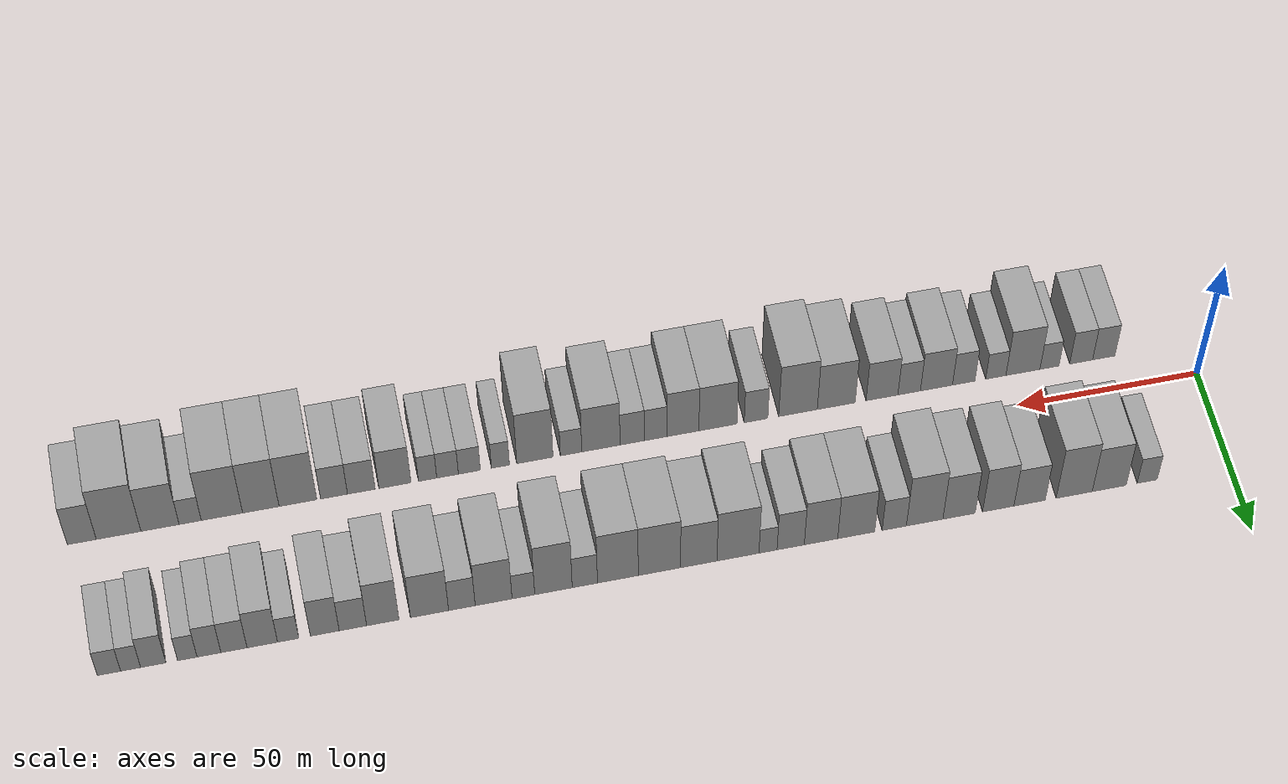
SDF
<sdf version="1.6">
 <world name="default">
  <scene>
   <sky><clouds><speed>12</speed></clouds></sky>
   <ambient>0.4 0.4 0.4 1</ambient>
   <background>0.7 0.7 0.7 1</background>
   <shadows>1</shadows>
  </scene>
  <gravity>0 0 -9.8066</gravity>
  <magnetic_field>6e-06 2.3e-05 -4.2e-05</magnetic_field>
  <physics default="0" name="default_physics" type="ode">
   <ode>
    <solver>
     <type>quick</type>
     <iters>10</iters>
     <sor>1.0</sor>
     <use_dynamic_moi_rescaling>0</use_dynamic_moi_rescaling>
    </solver>
    <constraints>
     <cfm>0</cfm>
     <erp>0.2</erp>
     <contact_max_correcting_vel>100</contact_max_correcting_vel>
     <contact_surface_layer>0.001</contact_surface_layer>
    </constraints>
   </ode>
   <max_step_size>0.004</max_step_size>
   <real_time_factor>1</real_time_factor>
   <real_time_update_rate>250</real_time_update_rate>
  </physics>
  <light name="sun" type="directional">
   <pose>0 0 10 0 0 0</pose>
   <diffuse>0.8 0.8 0.8 1</diffuse>
   <specular>0.2 0.2 0.2 1</specular>
   <attenuation>
    <range>1000</range>
    <constant>0.9</constant>
    <linear>0.01</linear>
    <quadratic>0.001</quadratic>
   </attenuation>
   <direction>-0.5 0.1 -0.9</direction>
  </light>
  <model name="building_1">
   <static>1</static>
   <pose>22.7554 20.0000 0 0.000000 0.000000 1.570796</pose>
   <link name="link">
    <pose>0 0 6.00 0 0 0</pose>
    <collision name="collision"><geometry><box><size>20.0000 5.5108 12.0000</size></box></geometry></collision>
    <visual name="visual">
     <cast_shadows>0</cast_shadows>
     <geometry><box><size>20.0000 5.5108 12.0000</size></box></geometry>
     <material>
      <script>
       <uri>model://grey_wall/materials/scripts</uri>
       <uri>model://grey_wall/materials/textures</uri>
       <name>vrc/grey_wall</name>
      </script>
     </material>
    </visual>
   </link>
  </model>
  <model name="building_2">
   <static>1</static>
   <pose>33.1985 20.0000 0 0.000000 0.000000 1.570796</pose>
   <link name="link">
    <pose>0 0 10.50 0 0 0</pose>
    <collision name="collision"><geometry><box><size>20.0000 9.3754 21.0000</size></box></geometry></collision>
    <visual name="visual">
     <cast_shadows>0</cast_shadows>
     <geometry><box><size>20.0000 9.3754 21.0000</size></box></geometry>
     <material>
      <script>
       <uri>model://grey_wall/materials/scripts</uri>
       <uri>model://grey_wall/materials/textures</uri>
       <name>vrc/grey_wall</name>
      </script>
     </material>
    </visual>
   </link>
  </model>
  <model name="building_3">
   <static>1</static>
   <pose>42.8242 20.0000 0 0.000000 0.000000 1.570796</pose>
   <link name="link">
    <pose>0 0 12.00 0 0 0</pose>
    <collision name="collision"><geometry><box><size>20.0000 9.8761 24.0000</size></box></geometry></collision>
    <visual name="visual">
     <cast_shadows>0</cast_shadows>
     <geometry><box><size>20.0000 9.8761 24.0000</size></box></geometry>
     <material>
      <script>
       <uri>model://grey_wall/materials/scripts</uri>
       <uri>model://grey_wall/materials/textures</uri>
       <name>vrc/grey_wall</name>
      </script>
     </material>
    </visual>
   </link>
  </model>
  <model name="building_4">
   <static>1</static>
   <pose>55.0346 20.0000 0 0.000000 0.000000 1.570796</pose>
   <link name="link">
    <pose>0 0 9.00 0 0 0</pose>
    <collision name="collision"><geometry><box><size>20.0000 8.5447 18.0000</size></box></geometry></collision>
    <visual name="visual">
     <cast_shadows>0</cast_shadows>
     <geometry><box><size>20.0000 8.5447 18.0000</size></box></geometry>
     <material>
      <script>
       <uri>model://grey_wall/materials/scripts</uri>
       <uri>model://grey_wall/materials/textures</uri>
       <name>vrc/grey_wall</name>
      </script>
     </material>
    </visual>
   </link>
  </model>
  <model name="building_5">
   <static>1</static>
   <pose>63.5918 20.0000 0 0.000000 0.000000 1.570796</pose>
   <link name="link">
    <pose>0 0 10.50 0 0 0</pose>
    <collision name="collision"><geometry><box><size>20.0000 8.5697 21.0000</size></box></geometry></collision>
    <visual name="visual">
     <cast_shadows>0</cast_shadows>
     <geometry><box><size>20.0000 8.5697 21.0000</size></box></geometry>
     <material>
      <script>
       <uri>model://grey_wall/materials/scripts</uri>
       <uri>model://grey_wall/materials/textures</uri>
       <name>vrc/grey_wall</name>
      </script>
     </material>
    </visual>
   </link>
  </model>
  <model name="building_6">
   <static>1</static>
   <pose>74.2728 20.0000 0 0.000000 0.000000 1.570796</pose>
   <link name="link">
    <pose>0 0 10.50 0 0 0</pose>
    <collision name="collision"><geometry><box><size>20.0000 8.7923 21.0000</size></box></geometry></collision>
    <visual name="visual">
     <cast_shadows>0</cast_shadows>
     <geometry><box><size>20.0000 8.7923 21.0000</size></box></geometry>
     <material>
      <script>
       <uri>model://grey_wall/materials/scripts</uri>
       <uri>model://grey_wall/materials/textures</uri>
       <name>vrc/grey_wall</name>
      </script>
     </material>
    </visual>
   </link>
  </model>
  <model name="building_7">
   <static>1</static>
   <pose>83.6210 20.0000 0 0.000000 0.000000 1.570796</pose>
   <link name="link">
    <pose>0 0 12.00 0 0 0</pose>
    <collision name="collision"><geometry><box><size>20.0000 9.9040 24.0000</size></box></geometry></collision>
    <visual name="visual">
     <cast_shadows>0</cast_shadows>
     <geometry><box><size>20.0000 9.9040 24.0000</size></box></geometry>
     <material>
      <script>
       <uri>model://grey_wall/materials/scripts</uri>
       <uri>model://grey_wall/materials/textures</uri>
       <name>vrc/grey_wall</name>
      </script>
     </material>
    </visual>
   </link>
  </model>
  <model name="building_8">
   <static>1</static>
   <pose>91.8562 20.0000 0 0.000000 0.000000 1.570796</pose>
   <link name="link">
    <pose>0 0 7.50 0 0 0</pose>
    <collision name="collision"><geometry><box><size>20.0000 6.5665 15.0000</size></box></geometry></collision>
    <visual name="visual">
     <cast_shadows>0</cast_shadows>
     <geometry><box><size>20.0000 6.5665 15.0000</size></box></geometry>
     <material>
      <script>
       <uri>model://grey_wall/materials/scripts</uri>
       <uri>model://grey_wall/materials/textures</uri>
       <name>vrc/grey_wall</name>
      </script>
     </material>
    </visual>
   </link>
  </model>
  <model name="building_9">
   <static>1</static>
   <pose>102.1402 20.0000 0 0.000000 0.000000 1.570796</pose>
   <link name="link">
    <pose>0 0 10.50 0 0 0</pose>
    <collision name="collision"><geometry><box><size>20.0000 10.0015 21.0000</size></box></geometry></collision>
    <visual name="visual">
     <cast_shadows>0</cast_shadows>
     <geometry><box><size>20.0000 10.0015 21.0000</size></box></geometry>
     <material>
      <script>
       <uri>model://grey_wall/materials/scripts</uri>
       <uri>model://grey_wall/materials/textures</uri>
       <name>vrc/grey_wall</name>
      </script>
     </material>
    </visual>
   </link>
  </model>
  <model name="building_10">
   <static>1</static>
   <pose>111.6415 20.0000 0 0.000000 0.000000 1.570796</pose>
   <link name="link">
    <pose>0 0 10.50 0 0 0</pose>
    <collision name="collision"><geometry><box><size>20.0000 9.0011 21.0000</size></box></geometry></collision>
    <visual name="visual">
     <cast_shadows>0</cast_shadows>
     <geometry><box><size>20.0000 9.0011 21.0000</size></box></geometry>
     <material>
      <script>
       <uri>model://grey_wall/materials/scripts</uri>
       <uri>model://grey_wall/materials/textures</uri>
       <name>vrc/grey_wall</name>
      </script>
     </material>
    </visual>
   </link>
  </model>
  <model name="building_11">
   <static>1</static>
   <pose>119.8047 20.0000 0 0.000000 0.000000 1.570796</pose>
   <link name="link">
    <pose>0 0 9.00 0 0 0</pose>
    <collision name="collision"><geometry><box><size>20.0000 7.3252 18.0000</size></box></geometry></collision>
    <visual name="visual">
     <cast_shadows>0</cast_shadows>
     <geometry><box><size>20.0000 7.3252 18.0000</size></box></geometry>
     <material>
      <script>
       <uri>model://grey_wall/materials/scripts</uri>
       <uri>model://grey_wall/materials/textures</uri>
       <name>vrc/grey_wall</name>
      </script>
     </material>
    </visual>
   </link>
  </model>
  <model name="building_12">
   <static>1</static>
   <pose>125.8942 20.0000 0 0.000000 0.000000 1.570796</pose>
   <link name="link">
    <pose>0 0 6.00 0 0 0</pose>
    <collision name="collision"><geometry><box><size>20.0000 4.8540 12.0000</size></box></geometry></collision>
    <visual name="visual">
     <cast_shadows>0</cast_shadows>
     <geometry><box><size>20.0000 4.8540 12.0000</size></box></geometry>
     <material>
      <script>
       <uri>model://grey_wall/materials/scripts</uri>
       <uri>model://grey_wall/materials/textures</uri>
       <name>vrc/grey_wall</name>
      </script>
     </material>
    </visual>
   </link>
  </model>
  <model name="building_13">
   <static>1</static>
   <pose>133.9454 20.0000 0 0.000000 0.000000 1.570796</pose>
   <link name="link">
    <pose>0 0 12.00 0 0 0</pose>
    <collision name="collision"><geometry><box><size>20.0000 11.2484 24.0000</size></box></geometry></collision>
    <visual name="visual">
     <cast_shadows>0</cast_shadows>
     <geometry><box><size>20.0000 11.2484 24.0000</size></box></geometry>
     <material>
      <script>
       <uri>model://grey_wall/materials/scripts</uri>
       <uri>model://grey_wall/materials/textures</uri>
       <name>vrc/grey_wall</name>
      </script>
     </material>
    </visual>
   </link>
  </model>
  <model name="building_14">
   <static>1</static>
   <pose>144.4498 20.0000 0 0.000000 0.000000 1.570796</pose>
   <link name="link">
    <pose>0 0 10.50 0 0 0</pose>
    <collision name="collision"><geometry><box><size>20.0000 9.7603 21.0000</size></box></geometry></collision>
    <visual name="visual">
     <cast_shadows>0</cast_shadows>
     <geometry><box><size>20.0000 9.7603 21.0000</size></box></geometry>
     <material>
      <script>
       <uri>model://grey_wall/materials/scripts</uri>
       <uri>model://grey_wall/materials/textures</uri>
       <name>vrc/grey_wall</name>
      </script>
     </material>
    </visual>
   </link>
  </model>
  <model name="building_15">
   <static>1</static>
   <pose>154.9376 20.0000 0 0.000000 0.000000 1.570796</pose>
   <link name="link">
    <pose>0 0 12.00 0 0 0</pose>
    <collision name="collision"><geometry><box><size>20.0000 11.2152 24.0000</size></box></geometry></collision>
    <visual name="visual">
     <cast_shadows>0</cast_shadows>
     <geometry><box><size>20.0000 11.2152 24.0000</size></box></geometry>
     <material>
      <script>
       <uri>model://grey_wall/materials/scripts</uri>
       <uri>model://grey_wall/materials/textures</uri>
       <name>vrc/grey_wall</name>
      </script>
     </material>
    </visual>
   </link>
  </model>
  <model name="building_16">
   <static>1</static>
   <pose>165.9656 20.0000 0 0.000000 0.000000 1.570796</pose>
   <link name="link">
    <pose>0 0 12.00 0 0 0</pose>
    <collision name="collision"><geometry><box><size>20.0000 10.8410 24.0000</size></box></geometry></collision>
    <visual name="visual">
     <cast_shadows>0</cast_shadows>
     <geometry><box><size>20.0000 10.8410 24.0000</size></box></geometry>
     <material>
      <script>
       <uri>model://grey_wall/materials/scripts</uri>
       <uri>model://grey_wall/materials/textures</uri>
       <name>vrc/grey_wall</name>
      </script>
     </material>
    </visual>
   </link>
  </model>
  <model name="building_17">
   <static>1</static>
   <pose>174.7330 20.0000 0 0.000000 0.000000 1.570796</pose>
   <link name="link">
    <pose>0 0 7.50 0 0 0</pose>
    <collision name="collision"><geometry><box><size>20.0000 6.6937 15.0000</size></box></geometry></collision>
    <visual name="visual">
     <cast_shadows>0</cast_shadows>
     <geometry><box><size>20.0000 6.6937 15.0000</size></box></geometry>
     <material>
      <script>
       <uri>model://grey_wall/materials/scripts</uri>
       <uri>model://grey_wall/materials/textures</uri>
       <name>vrc/grey_wall</name>
      </script>
     </material>
    </visual>
   </link>
  </model>
  <model name="building_18">
   <static>1</static>
   <pose>183.0394 20.0000 0 0.000000 0.000000 1.570796</pose>
   <link name="link">
    <pose>0 0 12.00 0 0 0</pose>
    <collision name="collision"><geometry><box><size>20.0000 9.9190 24.0000</size></box></geometry></collision>
    <visual name="visual">
     <cast_shadows>0</cast_shadows>
     <geometry><box><size>20.0000 9.9190 24.0000</size></box></geometry>
     <material>
      <script>
       <uri>model://grey_wall/materials/scripts</uri>
       <uri>model://grey_wall/materials/textures</uri>
       <name>vrc/grey_wall</name>
      </script>
     </material>
    </visual>
   </link>
  </model>
  <model name="building_19">
   <static>1</static>
   <pose>190.9892 20.0000 0 0.000000 0.000000 1.570796</pose>
   <link name="link">
    <pose>0 0 6.00 0 0 0</pose>
    <collision name="collision"><geometry><box><size>20.0000 5.9807 12.0000</size></box></geometry></collision>
    <visual name="visual">
     <cast_shadows>0</cast_shadows>
     <geometry><box><size>20.0000 5.9807 12.0000</size></box></geometry>
     <material>
      <script>
       <uri>model://grey_wall/materials/scripts</uri>
       <uri>model://grey_wall/materials/textures</uri>
       <name>vrc/grey_wall</name>
      </script>
     </material>
    </visual>
   </link>
  </model>
  <model name="building_20">
   <static>1</static>
   <pose>198.8270 20.0000 0 0.000000 0.000000 1.570796</pose>
   <link name="link">
    <pose>0 0 10.50 0 0 0</pose>
    <collision name="collision"><geometry><box><size>20.0000 9.6948 21.0000</size></box></geometry></collision>
    <visual name="visual">
     <cast_shadows>0</cast_shadows>
     <geometry><box><size>20.0000 9.6948 21.0000</size></box></geometry>
     <material>
      <script>
       <uri>model://grey_wall/materials/scripts</uri>
       <uri>model://grey_wall/materials/textures</uri>
       <name>vrc/grey_wall</name>
      </script>
     </material>
    </visual>
   </link>
  </model>
  <model name="building_21">
   <static>1</static>
   <pose>207.1692 20.0000 0 0.000000 0.000000 1.570796</pose>
   <link name="link">
    <pose>0 0 7.50 0 0 0</pose>
    <collision name="collision"><geometry><box><size>20.0000 6.9896 15.0000</size></box></geometry></collision>
    <visual name="visual">
     <cast_shadows>0</cast_shadows>
     <geometry><box><size>20.0000 6.9896 15.0000</size></box></geometry>
     <material>
      <script>
       <uri>model://grey_wall/materials/scripts</uri>
       <uri>model://grey_wall/materials/textures</uri>
       <name>vrc/grey_wall</name>
      </script>
     </material>
    </visual>
   </link>
  </model>
  <model name="building_22">
   <static>1</static>
   <pose>215.6674 20.0000 0 0.000000 0.000000 1.570796</pose>
   <link name="link">
    <pose>0 0 10.50 0 0 0</pose>
    <collision name="collision"><geometry><box><size>20.0000 10.0068 21.0000</size></box></geometry></collision>
    <visual name="visual">
     <cast_shadows>0</cast_shadows>
     <geometry><box><size>20.0000 10.0068 21.0000</size></box></geometry>
     <material>
      <script>
       <uri>model://grey_wall/materials/scripts</uri>
       <uri>model://grey_wall/materials/textures</uri>
       <name>vrc/grey_wall</name>
      </script>
     </material>
    </visual>
   </link>
  </model>
  <model name="building_23">
   <static>1</static>
   <pose>227.8896 20.0000 0 0.000000 0.000000 1.570796</pose>
   <link name="link">
    <pose>0 0 10.50 0 0 0</pose>
    <collision name="collision"><geometry><box><size>20.0000 8.4376 21.0000</size></box></geometry></collision>
    <visual name="visual">
     <cast_shadows>0</cast_shadows>
     <geometry><box><size>20.0000 8.4376 21.0000</size></box></geometry>
     <material>
      <script>
       <uri>model://grey_wall/materials/scripts</uri>
       <uri>model://grey_wall/materials/textures</uri>
       <name>vrc/grey_wall</name>
      </script>
     </material>
    </visual>
   </link>
  </model>
  <model name="building_24">
   <static>1</static>
   <pose>235.6966 20.0000 0 0.000000 0.000000 1.570796</pose>
   <link name="link">
    <pose>0 0 7.50 0 0 0</pose>
    <collision name="collision"><geometry><box><size>20.0000 7.1764 15.0000</size></box></geometry></collision>
    <visual name="visual">
     <cast_shadows>0</cast_shadows>
     <geometry><box><size>20.0000 7.1764 15.0000</size></box></geometry>
     <material>
      <script>
       <uri>model://grey_wall/materials/scripts</uri>
       <uri>model://grey_wall/materials/textures</uri>
       <name>vrc/grey_wall</name>
      </script>
     </material>
    </visual>
   </link>
  </model>
  <model name="building_25">
   <static>1</static>
   <pose>243.0380 20.0000 0 0.000000 0.000000 1.570796</pose>
   <link name="link">
    <pose>0 0 9.00 0 0 0</pose>
    <collision name="collision"><geometry><box><size>20.0000 7.5064 18.0000</size></box></geometry></collision>
    <visual name="visual">
     <cast_shadows>0</cast_shadows>
     <geometry><box><size>20.0000 7.5064 18.0000</size></box></geometry>
     <material>
      <script>
       <uri>model://grey_wall/materials/scripts</uri>
       <uri>model://grey_wall/materials/textures</uri>
       <name>vrc/grey_wall</name>
      </script>
     </material>
    </visual>
   </link>
  </model>
  <model name="building_26">
   <static>1</static>
   <pose>252.5489 20.0000 0 0.000000 0.000000 1.570796</pose>
   <link name="link">
    <pose>0 0 6.00 0 0 0</pose>
    <collision name="collision"><geometry><box><size>20.0000 5.5153 12.0000</size></box></geometry></collision>
    <visual name="visual">
     <cast_shadows>0</cast_shadows>
     <geometry><box><size>20.0000 5.5153 12.0000</size></box></geometry>
     <material>
      <script>
       <uri>model://grey_wall/materials/scripts</uri>
       <uri>model://grey_wall/materials/textures</uri>
       <name>vrc/grey_wall</name>
      </script>
     </material>
    </visual>
   </link>
  </model>
  <model name="building_27">
   <static>1</static>
   <pose>259.2600 20.0000 0 0.000000 0.000000 1.570796</pose>
   <link name="link">
    <pose>0 0 9.00 0 0 0</pose>
    <collision name="collision"><geometry><box><size>20.0000 7.9069 18.0000</size></box></geometry></collision>
    <visual name="visual">
     <cast_shadows>0</cast_shadows>
     <geometry><box><size>20.0000 7.9069 18.0000</size></box></geometry>
     <material>
      <script>
       <uri>model://grey_wall/materials/scripts</uri>
       <uri>model://grey_wall/materials/textures</uri>
       <name>vrc/grey_wall</name>
      </script>
     </material>
    </visual>
   </link>
  </model>
  <model name="building_28">
   <static>1</static>
   <pose>266.5928 20.0000 0 0.000000 0.000000 1.570796</pose>
   <link name="link">
    <pose>0 0 7.50 0 0 0</pose>
    <collision name="collision"><geometry><box><size>20.0000 6.7587 15.0000</size></box></geometry></collision>
    <visual name="visual">
     <cast_shadows>0</cast_shadows>
     <geometry><box><size>20.0000 6.7587 15.0000</size></box></geometry>
     <material>
      <script>
       <uri>model://grey_wall/materials/scripts</uri>
       <uri>model://grey_wall/materials/textures</uri>
       <name>vrc/grey_wall</name>
      </script>
     </material>
    </visual>
   </link>
  </model>
  <model name="building_29">
   <static>1</static>
   <pose>273.0589 20.0000 0 0.000000 0.000000 1.570796</pose>
   <link name="link">
    <pose>0 0 7.50 0 0 0</pose>
    <collision name="collision"><geometry><box><size>20.0000 6.1735 15.0000</size></box></geometry></collision>
    <visual name="visual">
     <cast_shadows>0</cast_shadows>
     <geometry><box><size>20.0000 6.1735 15.0000</size></box></geometry>
     <material>
      <script>
       <uri>model://grey_wall/materials/scripts</uri>
       <uri>model://grey_wall/materials/textures</uri>
       <name>vrc/grey_wall</name>
      </script>
     </material>
    </visual>
   </link>
  </model>
  <model name="building_30">
   <static>1</static>
   <pose>278.6506 20.0000 0 0.000000 0.000000 1.570796</pose>
   <link name="link">
    <pose>0 0 6.00 0 0 0</pose>
    <collision name="collision"><geometry><box><size>20.0000 5.0098 12.0000</size></box></geometry></collision>
    <visual name="visual">
     <cast_shadows>0</cast_shadows>
     <geometry><box><size>20.0000 5.0098 12.0000</size></box></geometry>
     <material>
      <script>
       <uri>model://grey_wall/materials/scripts</uri>
       <uri>model://grey_wall/materials/textures</uri>
       <name>vrc/grey_wall</name>
      </script>
     </material>
    </visual>
   </link>
  </model>
  <model name="building_31">
   <static>1</static>
   <pose>287.4154 20.0000 0 0.000000 0.000000 1.570796</pose>
   <link name="link">
    <pose>0 0 7.50 0 0 0</pose>
    <collision name="collision"><geometry><box><size>20.0000 6.5198 15.0000</size></box></geometry></collision>
    <visual name="visual">
     <cast_shadows>0</cast_shadows>
     <geometry><box><size>20.0000 6.5198 15.0000</size></box></geometry>
     <material>
      <script>
       <uri>model://grey_wall/materials/scripts</uri>
       <uri>model://grey_wall/materials/textures</uri>
       <name>vrc/grey_wall</name>
      </script>
     </material>
    </visual>
   </link>
  </model>
  <model name="building_32">
   <static>1</static>
   <pose>293.2483 20.0000 0 0.000000 0.000000 1.570796</pose>
   <link name="link">
    <pose>0 0 6.00 0 0 0</pose>
    <collision name="collision"><geometry><box><size>20.0000 5.1459 12.0000</size></box></geometry></collision>
    <visual name="visual">
     <cast_shadows>0</cast_shadows>
     <geometry><box><size>20.0000 5.1459 12.0000</size></box></geometry>
     <material>
      <script>
       <uri>model://grey_wall/materials/scripts</uri>
       <uri>model://grey_wall/materials/textures</uri>
       <name>vrc/grey_wall</name>
      </script>
     </material>
    </visual>
   </link>
  </model>
  <model name="building_33">
   <static>1</static>
   <pose>298.8159 20.0000 0 0.000000 0.000000 1.570796</pose>
   <link name="link">
    <pose>0 0 6.00 0 0 0</pose>
    <collision name="collision"><geometry><box><size>20.0000 5.9893 12.0000</size></box></geometry></collision>
    <visual name="visual">
     <cast_shadows>0</cast_shadows>
     <geometry><box><size>20.0000 5.9893 12.0000</size></box></geometry>
     <material>
      <script>
       <uri>model://grey_wall/materials/scripts</uri>
       <uri>model://grey_wall/materials/textures</uri>
       <name>vrc/grey_wall</name>
      </script>
     </material>
    </visual>
   </link>
  </model>
  <model name="building_34">
   <static>1</static>
   <pose>23.1378 -20.0000 0 0.000000 0.000000 1.570796</pose>
   <link name="link">
    <pose>0 0 7.50 0 0 0</pose>
    <collision name="collision"><geometry><box><size>20.0000 6.2755 15.0000</size></box></geometry></collision>
    <visual name="visual">
     <cast_shadows>0</cast_shadows>
     <geometry><box><size>20.0000 6.2755 15.0000</size></box></geometry>
     <material>
      <script>
       <uri>model://grey_wall/materials/scripts</uri>
       <uri>model://grey_wall/materials/textures</uri>
       <name>vrc/grey_wall</name>
      </script>
     </material>
    </visual>
   </link>
  </model>
  <model name="building_35">
   <static>1</static>
   <pose>29.5007 -20.0000 0 0.000000 0.000000 1.570796</pose>
   <link name="link">
    <pose>0 0 7.50 0 0 0</pose>
    <collision name="collision"><geometry><box><size>20.0000 6.4504 15.0000</size></box></geometry></collision>
    <visual name="visual">
     <cast_shadows>0</cast_shadows>
     <geometry><box><size>20.0000 6.4504 15.0000</size></box></geometry>
     <material>
      <script>
       <uri>model://grey_wall/materials/scripts</uri>
       <uri>model://grey_wall/materials/textures</uri>
       <name>vrc/grey_wall</name>
      </script>
     </material>
    </visual>
   </link>
  </model>
  <model name="building_36">
   <static>1</static>
   <pose>38.4031 -20.0000 0 0.000000 0.000000 1.570796</pose>
   <link name="link">
    <pose>0 0 6.00 0 0 0</pose>
    <collision name="collision"><geometry><box><size>20.0000 5.3543 12.0000</size></box></geometry></collision>
    <visual name="visual">
     <cast_shadows>0</cast_shadows>
     <geometry><box><size>20.0000 5.3543 12.0000</size></box></geometry>
     <material>
      <script>
       <uri>model://grey_wall/materials/scripts</uri>
       <uri>model://grey_wall/materials/textures</uri>
       <name>vrc/grey_wall</name>
      </script>
     </material>
    </visual>
   </link>
  </model>
  <model name="building_37">
   <static>1</static>
   <pose>45.8455 -20.0000 0 0.000000 0.000000 1.570796</pose>
   <link name="link">
    <pose>0 0 10.50 0 0 0</pose>
    <collision name="collision"><geometry><box><size>20.0000 9.5305 21.0000</size></box></geometry></collision>
    <visual name="visual">
     <cast_shadows>0</cast_shadows>
     <geometry><box><size>20.0000 9.5305 21.0000</size></box></geometry>
     <material>
      <script>
       <uri>model://grey_wall/materials/scripts</uri>
       <uri>model://grey_wall/materials/textures</uri>
       <name>vrc/grey_wall</name>
      </script>
     </material>
    </visual>
   </link>
  </model>
  <model name="building_38">
   <static>1</static>
   <pose>53.4544 -20.0000 0 0.000000 0.000000 1.570796</pose>
   <link name="link">
    <pose>0 0 6.00 0 0 0</pose>
    <collision name="collision"><geometry><box><size>20.0000 5.6874 12.0000</size></box></geometry></collision>
    <visual name="visual">
     <cast_shadows>0</cast_shadows>
     <geometry><box><size>20.0000 5.6874 12.0000</size></box></geometry>
     <material>
      <script>
       <uri>model://grey_wall/materials/scripts</uri>
       <uri>model://grey_wall/materials/textures</uri>
       <name>vrc/grey_wall</name>
      </script>
     </material>
    </visual>
   </link>
  </model>
  <model name="building_39">
   <static>1</static>
   <pose>62.4285 -20.0000 0 0.000000 0.000000 1.570796</pose>
   <link name="link">
    <pose>0 0 7.50 0 0 0</pose>
    <collision name="collision"><geometry><box><size>20.0000 6.2608 15.0000</size></box></geometry></collision>
    <visual name="visual">
     <cast_shadows>0</cast_shadows>
     <geometry><box><size>20.0000 6.2608 15.0000</size></box></geometry>
     <material>
      <script>
       <uri>model://grey_wall/materials/scripts</uri>
       <uri>model://grey_wall/materials/textures</uri>
       <name>vrc/grey_wall</name>
      </script>
     </material>
    </visual>
   </link>
  </model>
  <model name="building_40">
   <static>1</static>
   <pose>70.0182 -20.0000 0 0.000000 0.000000 1.570796</pose>
   <link name="link">
    <pose>0 0 9.00 0 0 0</pose>
    <collision name="collision"><geometry><box><size>20.0000 8.9185 18.0000</size></box></geometry></collision>
    <visual name="visual">
     <cast_shadows>0</cast_shadows>
     <geometry><box><size>20.0000 8.9185 18.0000</size></box></geometry>
     <material>
      <script>
       <uri>model://grey_wall/materials/scripts</uri>
       <uri>model://grey_wall/materials/textures</uri>
       <name>vrc/grey_wall</name>
      </script>
     </material>
    </visual>
   </link>
  </model>
  <model name="building_41">
   <static>1</static>
   <pose>77.6139 -20.0000 0 0.000000 0.000000 1.570796</pose>
   <link name="link">
    <pose>0 0 7.50 0 0 0</pose>
    <collision name="collision"><geometry><box><size>20.0000 6.2729 15.0000</size></box></geometry></collision>
    <visual name="visual">
     <cast_shadows>0</cast_shadows>
     <geometry><box><size>20.0000 6.2729 15.0000</size></box></geometry>
     <material>
      <script>
       <uri>model://grey_wall/materials/scripts</uri>
       <uri>model://grey_wall/materials/textures</uri>
       <name>vrc/grey_wall</name>
      </script>
     </material>
    </visual>
   </link>
  </model>
  <model name="building_42">
   <static>1</static>
   <pose>85.1703 -20.0000 0 0.000000 0.000000 1.570796</pose>
   <link name="link">
    <pose>0 0 9.00 0 0 0</pose>
    <collision name="collision"><geometry><box><size>20.0000 8.8398 18.0000</size></box></geometry></collision>
    <visual name="visual">
     <cast_shadows>0</cast_shadows>
     <geometry><box><size>20.0000 8.8398 18.0000</size></box></geometry>
     <material>
      <script>
       <uri>model://grey_wall/materials/scripts</uri>
       <uri>model://grey_wall/materials/textures</uri>
       <name>vrc/grey_wall</name>
      </script>
     </material>
    </visual>
   </link>
  </model>
  <model name="building_43">
   <static>1</static>
   <pose>97.8360 -20.0000 0 0.000000 0.000000 1.570796</pose>
   <link name="link">
    <pose>0 0 10.50 0 0 0</pose>
    <collision name="collision"><geometry><box><size>20.0000 10.4916 21.0000</size></box></geometry></collision>
    <visual name="visual">
     <cast_shadows>0</cast_shadows>
     <geometry><box><size>20.0000 10.4916 21.0000</size></box></geometry>
     <material>
      <script>
       <uri>model://grey_wall/materials/scripts</uri>
       <uri>model://grey_wall/materials/textures</uri>
       <name>vrc/grey_wall</name>
      </script>
     </material>
    </visual>
   </link>
  </model>
  <model name="building_44">
   <static>1</static>
   <pose>108.4044 -20.0000 0 0.000000 0.000000 1.570796</pose>
   <link name="link">
    <pose>0 0 12.00 0 0 0</pose>
    <collision name="collision"><geometry><box><size>20.0000 10.6452 24.0000</size></box></geometry></collision>
    <visual name="visual">
     <cast_shadows>0</cast_shadows>
     <geometry><box><size>20.0000 10.6452 24.0000</size></box></geometry>
     <material>
      <script>
       <uri>model://grey_wall/materials/scripts</uri>
       <uri>model://grey_wall/materials/textures</uri>
       <name>vrc/grey_wall</name>
      </script>
     </material>
    </visual>
   </link>
  </model>
  <model name="building_45">
   <static>1</static>
   <pose>119.9705 -20.0000 0 0.000000 0.000000 1.570796</pose>
   <link name="link">
    <pose>0 0 7.50 0 0 0</pose>
    <collision name="collision"><geometry><box><size>20.0000 6.4871 15.0000</size></box></geometry></collision>
    <visual name="visual">
     <cast_shadows>0</cast_shadows>
     <geometry><box><size>20.0000 6.4871 15.0000</size></box></geometry>
     <material>
      <script>
       <uri>model://grey_wall/materials/scripts</uri>
       <uri>model://grey_wall/materials/textures</uri>
       <name>vrc/grey_wall</name>
      </script>
     </material>
    </visual>
   </link>
  </model>
  <model name="building_46">
   <static>1</static>
   <pose>130.4368 -20.0000 0 0.000000 0.000000 1.570796</pose>
   <link name="link">
    <pose>0 0 10.50 0 0 0</pose>
    <collision name="collision"><geometry><box><size>20.0000 10.4453 21.0000</size></box></geometry></collision>
    <visual name="visual">
     <cast_shadows>0</cast_shadows>
     <geometry><box><size>20.0000 10.4453 21.0000</size></box></geometry>
     <material>
      <script>
       <uri>model://grey_wall/materials/scripts</uri>
       <uri>model://grey_wall/materials/textures</uri>
       <name>vrc/grey_wall</name>
      </script>
     </material>
    </visual>
   </link>
  </model>
  <model name="building_47">
   <static>1</static>
   <pose>140.0217 -20.0000 0 0.000000 0.000000 1.570796</pose>
   <link name="link">
    <pose>0 0 10.50 0 0 0</pose>
    <collision name="collision"><geometry><box><size>20.0000 8.7245 21.0000</size></box></geometry></collision>
    <visual name="visual">
     <cast_shadows>0</cast_shadows>
     <geometry><box><size>20.0000 8.7245 21.0000</size></box></geometry>
     <material>
      <script>
       <uri>model://grey_wall/materials/scripts</uri>
       <uri>model://grey_wall/materials/textures</uri>
       <name>vrc/grey_wall</name>
      </script>
     </material>
    </visual>
   </link>
  </model>
  <model name="building_48">
   <static>1</static>
   <pose>147.4580 -20.0000 0 0.000000 0.000000 1.570796</pose>
   <link name="link">
    <pose>0 0 7.50 0 0 0</pose>
    <collision name="collision"><geometry><box><size>20.0000 6.1481 15.0000</size></box></geometry></collision>
    <visual name="visual">
     <cast_shadows>0</cast_shadows>
     <geometry><box><size>20.0000 6.1481 15.0000</size></box></geometry>
     <material>
      <script>
       <uri>model://grey_wall/materials/scripts</uri>
       <uri>model://grey_wall/materials/textures</uri>
       <name>vrc/grey_wall</name>
      </script>
     </material>
    </visual>
   </link>
  </model>
  <model name="building_49">
   <static>1</static>
   <pose>153.8580 -20.0000 0 0.000000 0.000000 1.570796</pose>
   <link name="link">
    <pose>0 0 7.50 0 0 0</pose>
    <collision name="collision"><geometry><box><size>20.0000 6.6518 15.0000</size></box></geometry></collision>
    <visual name="visual">
     <cast_shadows>0</cast_shadows>
     <geometry><box><size>20.0000 6.6518 15.0000</size></box></geometry>
     <material>
      <script>
       <uri>model://grey_wall/materials/scripts</uri>
       <uri>model://grey_wall/materials/textures</uri>
       <name>vrc/grey_wall</name>
      </script>
     </material>
    </visual>
   </link>
  </model>
  <model name="building_50">
   <static>1</static>
   <pose>162.3891 -20.0000 0 0.000000 0.000000 1.570796</pose>
   <link name="link">
    <pose>0 0 10.50 0 0 0</pose>
    <collision name="collision"><geometry><box><size>20.0000 10.4104 21.0000</size></box></geometry></collision>
    <visual name="visual">
     <cast_shadows>0</cast_shadows>
     <geometry><box><size>20.0000 10.4104 21.0000</size></box></geometry>
     <material>
      <script>
       <uri>model://grey_wall/materials/scripts</uri>
       <uri>model://grey_wall/materials/textures</uri>
       <name>vrc/grey_wall</name>
      </script>
     </material>
    </visual>
   </link>
  </model>
  <model name="building_51">
   <static>1</static>
   <pose>170.5029 -20.0000 0 0.000000 0.000000 1.570796</pose>
   <link name="link">
    <pose>0 0 6.00 0 0 0</pose>
    <collision name="collision"><geometry><box><size>20.0000 5.8171 12.0000</size></box></geometry></collision>
    <visual name="visual">
     <cast_shadows>0</cast_shadows>
     <geometry><box><size>20.0000 5.8171 12.0000</size></box></geometry>
     <material>
      <script>
       <uri>model://grey_wall/materials/scripts</uri>
       <uri>model://grey_wall/materials/textures</uri>
       <name>vrc/grey_wall</name>
      </script>
     </material>
    </visual>
   </link>
  </model>
  <model name="building_52">
   <static>1</static>
   <pose>180.3146 -20.0000 0 0.000000 0.000000 1.570796</pose>
   <link name="link">
    <pose>0 0 12.00 0 0 0</pose>
    <collision name="collision"><geometry><box><size>20.0000 9.8064 24.0000</size></box></geometry></collision>
    <visual name="visual">
     <cast_shadows>0</cast_shadows>
     <geometry><box><size>20.0000 9.8064 24.0000</size></box></geometry>
     <material>
      <script>
       <uri>model://grey_wall/materials/scripts</uri>
       <uri>model://grey_wall/materials/textures</uri>
       <name>vrc/grey_wall</name>
      </script>
     </material>
    </visual>
   </link>
  </model>
  <model name="building_53">
   <static>1</static>
   <pose>189.6406 -20.0000 0 0.000000 0.000000 1.570796</pose>
   <link name="link">
    <pose>0 0 6.00 0 0 0</pose>
    <collision name="collision"><geometry><box><size>20.0000 4.8457 12.0000</size></box></geometry></collision>
    <visual name="visual">
     <cast_shadows>0</cast_shadows>
     <geometry><box><size>20.0000 4.8457 12.0000</size></box></geometry>
     <material>
      <script>
       <uri>model://grey_wall/materials/scripts</uri>
       <uri>model://grey_wall/materials/textures</uri>
       <name>vrc/grey_wall</name>
      </script>
     </material>
    </visual>
   </link>
  </model>
  <model name="building_54">
   <static>1</static>
   <pose>198.0218 -20.0000 0 0.000000 0.000000 1.570796</pose>
   <link name="link">
    <pose>0 0 6.00 0 0 0</pose>
    <collision name="collision"><geometry><box><size>20.0000 5.9168 12.0000</size></box></geometry></collision>
    <visual name="visual">
     <cast_shadows>0</cast_shadows>
     <geometry><box><size>20.0000 5.9168 12.0000</size></box></geometry>
     <material>
      <script>
       <uri>model://grey_wall/materials/scripts</uri>
       <uri>model://grey_wall/materials/textures</uri>
       <name>vrc/grey_wall</name>
      </script>
     </material>
    </visual>
   </link>
  </model>
  <model name="building_55">
   <static>1</static>
   <pose>203.8933 -20.0000 0 0.000000 0.000000 1.570796</pose>
   <link name="link">
    <pose>0 0 6.00 0 0 0</pose>
    <collision name="collision"><geometry><box><size>20.0000 5.8261 12.0000</size></box></geometry></collision>
    <visual name="visual">
     <cast_shadows>0</cast_shadows>
     <geometry><box><size>20.0000 5.8261 12.0000</size></box></geometry>
     <material>
      <script>
       <uri>model://grey_wall/materials/scripts</uri>
       <uri>model://grey_wall/materials/textures</uri>
       <name>vrc/grey_wall</name>
      </script>
     </material>
    </visual>
   </link>
  </model>
  <model name="building_56">
   <static>1</static>
   <pose>209.2718 -20.0000 0 0.000000 0.000000 1.570796</pose>
   <link name="link">
    <pose>0 0 6.00 0 0 0</pose>
    <collision name="collision"><geometry><box><size>20.0000 4.9309 12.0000</size></box></geometry></collision>
    <visual name="visual">
     <cast_shadows>0</cast_shadows>
     <geometry><box><size>20.0000 4.9309 12.0000</size></box></geometry>
     <material>
      <script>
       <uri>model://grey_wall/materials/scripts</uri>
       <uri>model://grey_wall/materials/textures</uri>
       <name>vrc/grey_wall</name>
      </script>
     </material>
    </visual>
   </link>
  </model>
  <model name="building_57">
   <static>1</static>
   <pose>218.0424 -20.0000 0 0.000000 0.000000 1.570796</pose>
   <link name="link">
    <pose>0 0 9.00 0 0 0</pose>
    <collision name="collision"><geometry><box><size>20.0000 8.6102 18.0000</size></box></geometry></collision>
    <visual name="visual">
     <cast_shadows>0</cast_shadows>
     <geometry><box><size>20.0000 8.6102 18.0000</size></box></geometry>
     <material>
      <script>
       <uri>model://grey_wall/materials/scripts</uri>
       <uri>model://grey_wall/materials/textures</uri>
       <name>vrc/grey_wall</name>
      </script>
     </material>
    </visual>
   </link>
  </model>
  <model name="building_58">
   <static>1</static>
   <pose>227.0455 -20.0000 0 0.000000 0.000000 1.570796</pose>
   <link name="link">
    <pose>0 0 7.50 0 0 0</pose>
    <collision name="collision"><geometry><box><size>20.0000 7.3959 15.0000</size></box></geometry></collision>
    <visual name="visual">
     <cast_shadows>0</cast_shadows>
     <geometry><box><size>20.0000 7.3959 15.0000</size></box></geometry>
     <material>
      <script>
       <uri>model://grey_wall/materials/scripts</uri>
       <uri>model://grey_wall/materials/textures</uri>
       <name>vrc/grey_wall</name>
      </script>
     </material>
    </visual>
   </link>
  </model>
  <model name="building_59">
   <static>1</static>
   <pose>234.3477 -20.0000 0 0.000000 0.000000 1.570796</pose>
   <link name="link">
    <pose>0 0 7.50 0 0 0</pose>
    <collision name="collision"><geometry><box><size>20.0000 7.2085 15.0000</size></box></geometry></collision>
    <visual name="visual">
     <cast_shadows>0</cast_shadows>
     <geometry><box><size>20.0000 7.2085 15.0000</size></box></geometry>
     <material>
      <script>
       <uri>model://grey_wall/materials/scripts</uri>
       <uri>model://grey_wall/materials/textures</uri>
       <name>vrc/grey_wall</name>
      </script>
     </material>
    </visual>
   </link>
  </model>
  <model name="building_60">
   <static>1</static>
   <pose>243.9808 -20.0000 0 0.000000 0.000000 1.570796</pose>
   <link name="link">
    <pose>0 0 12.00 0 0 0</pose>
    <collision name="collision"><geometry><box><size>20.0000 10.0577 24.0000</size></box></geometry></collision>
    <visual name="visual">
     <cast_shadows>0</cast_shadows>
     <geometry><box><size>20.0000 10.0577 24.0000</size></box></geometry>
     <material>
      <script>
       <uri>model://grey_wall/materials/scripts</uri>
       <uri>model://grey_wall/materials/textures</uri>
       <name>vrc/grey_wall</name>
      </script>
     </material>
    </visual>
   </link>
  </model>
  <model name="building_61">
   <static>1</static>
   <pose>253.8539 -20.0000 0 0.000000 0.000000 1.570796</pose>
   <link name="link">
    <pose>0 0 12.00 0 0 0</pose>
    <collision name="collision"><geometry><box><size>20.0000 9.6887 24.0000</size></box></geometry></collision>
    <visual name="visual">
     <cast_shadows>0</cast_shadows>
     <geometry><box><size>20.0000 9.6887 24.0000</size></box></geometry>
     <material>
      <script>
       <uri>model://grey_wall/materials/scripts</uri>
       <uri>model://grey_wall/materials/textures</uri>
       <name>vrc/grey_wall</name>
      </script>
     </material>
    </visual>
   </link>
  </model>
  <model name="building_62">
   <static>1</static>
   <pose>264.1742 -20.0000 0 0.000000 0.000000 1.570796</pose>
   <link name="link">
    <pose>0 0 12.00 0 0 0</pose>
    <collision name="collision"><geometry><box><size>20.0000 10.9518 24.0000</size></box></geometry></collision>
    <visual name="visual">
     <cast_shadows>0</cast_shadows>
     <geometry><box><size>20.0000 10.9518 24.0000</size></box></geometry>
     <material>
      <script>
       <uri>model://grey_wall/materials/scripts</uri>
       <uri>model://grey_wall/materials/textures</uri>
       <name>vrc/grey_wall</name>
      </script>
     </material>
    </visual>
   </link>
  </model>
  <model name="building_63">
   <static>1</static>
   <pose>272.5870 -20.0000 0 0.000000 0.000000 1.570796</pose>
   <link name="link">
    <pose>0 0 6.00 0 0 0</pose>
    <collision name="collision"><geometry><box><size>20.0000 5.8738 12.0000</size></box></geometry></collision>
    <visual name="visual">
     <cast_shadows>0</cast_shadows>
     <geometry><box><size>20.0000 5.8738 12.0000</size></box></geometry>
     <material>
      <script>
       <uri>model://grey_wall/materials/scripts</uri>
       <uri>model://grey_wall/materials/textures</uri>
       <name>vrc/grey_wall</name>
      </script>
     </material>
    </visual>
   </link>
  </model>
  <model name="building_64">
   <static>1</static>
   <pose>280.5660 -20.0000 0 0.000000 0.000000 1.570796</pose>
   <link name="link">
    <pose>0 0 10.50 0 0 0</pose>
    <collision name="collision"><geometry><box><size>20.0000 10.0842 21.0000</size></box></geometry></collision>
    <visual name="visual">
     <cast_shadows>0</cast_shadows>
     <geometry><box><size>20.0000 10.0842 21.0000</size></box></geometry>
     <material>
      <script>
       <uri>model://grey_wall/materials/scripts</uri>
       <uri>model://grey_wall/materials/textures</uri>
       <name>vrc/grey_wall</name>
      </script>
     </material>
    </visual>
   </link>
  </model>
  <model name="building_65">
   <static>1</static>
   <pose>291.4853 -20.0000 0 0.000000 0.000000 1.570796</pose>
   <link name="link">
    <pose>0 0 12.00 0 0 0</pose>
    <collision name="collision"><geometry><box><size>20.0000 11.7543 24.0000</size></box></geometry></collision>
    <visual name="visual">
     <cast_shadows>0</cast_shadows>
     <geometry><box><size>20.0000 11.7543 24.0000</size></box></geometry>
     <material>
      <script>
       <uri>model://grey_wall/materials/scripts</uri>
       <uri>model://grey_wall/materials/textures</uri>
       <name>vrc/grey_wall</name>
      </script>
     </material>
    </visual>
   </link>
  </model>
  <model name="building_66">
   <static>1</static>
   <pose>301.1720 -20.0000 0 0.000000 0.000000 1.570796</pose>
   <link name="link">
    <pose>0 0 9.00 0 0 0</pose>
    <collision name="collision"><geometry><box><size>20.0000 7.6192 18.0000</size></box></geometry></collision>
    <visual name="visual">
     <cast_shadows>0</cast_shadows>
     <geometry><box><size>20.0000 7.6192 18.0000</size></box></geometry>
     <material>
      <script>
       <uri>model://grey_wall/materials/scripts</uri>
       <uri>model://grey_wall/materials/textures</uri>
       <name>vrc/grey_wall</name>
      </script>
     </material>
    </visual>
   </link>
  </model>
 </world>
</sdf>
